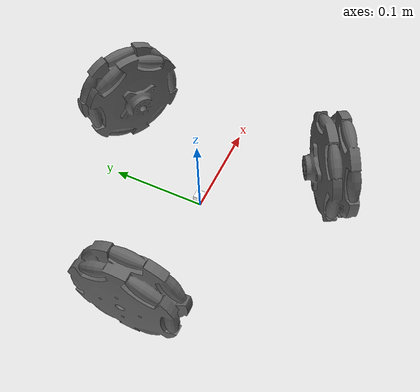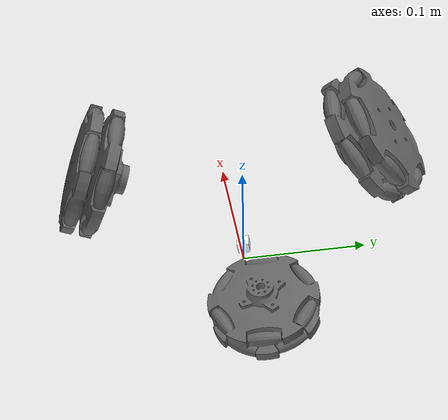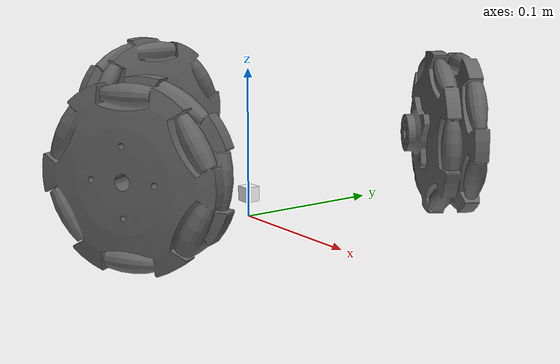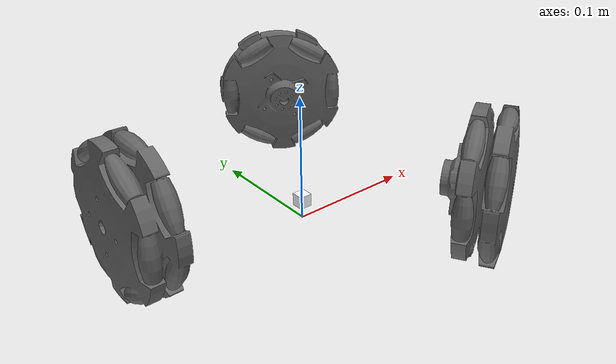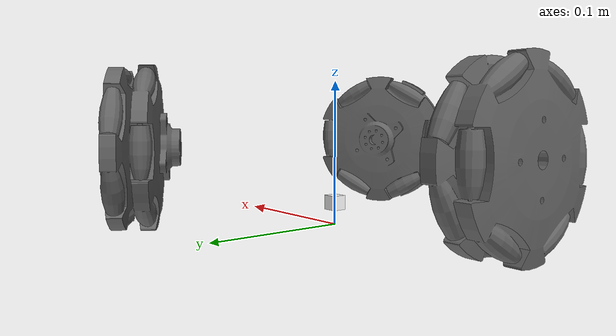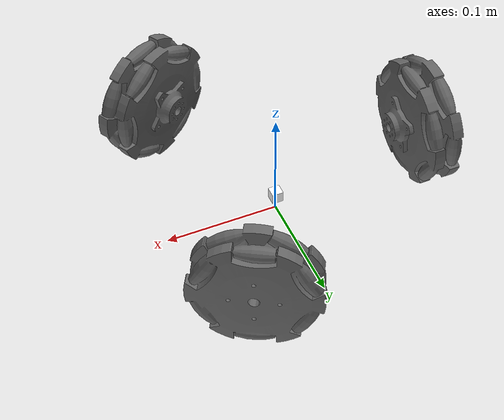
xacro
<?xml version="1.0" ?>
<robot name="omni_base" xmlns:xacro="http://ros.org/wiki/xacro">

  <link name="base_footprint"/>

  <joint name="base_joint" type="fixed">
    <parent link="base_footprint"/>
    <child link="base_link"/>
    <origin xyz="0.0 0.0 0.01575" rpy="0 0 0"/>
  </joint>

  <link name="base_link">
    <visual>
      <origin xyz="0.0 0.0 0.0" rpy="0 0 1.570796"/>
      <geometry>
        <box size="0.01 0.01 0.01"/>
      </geometry>
      <material name="white">
        <color rgba="1.0 1.0 1.0 1.0"/>
      </material>
    </visual>

    <collision>
      <origin xyz="0 0 0" rpy="0 0 0"/>
      <geometry>
        <cylinder length="0.08" radius="0.12"/>
      </geometry>
    </collision>
  </link>

  <joint name="wheel_joint_1" type="continuous">
    <parent link="base_link"/>
    <child link="wheel_link_1"/>
    <origin xyz="0.068 -0.117779 0.03925" rpy="1.570796 0 0.523598"/>
    <axis xyz="0 0 1"/>
  </joint>

  <link name="wheel_link_1">
    <visual>
      <origin xyz="0 0 -0.03" rpy="0 0 0"/>
      <geometry>
        <mesh filename="package://urdf_example/meshes/wheel.stl" scale="0.001 0.001 0.001"/>
      </geometry>
      <material name="light_black">
        <color rgba="0.4 0.4 0.4 1.0"/>
      </material>
    </visual>

    <collision>
      <origin xyz="0 0 0" rpy="0 0 0"/>
      <geometry>
        <cylinder length="0.018" radius="0.033"/>
      </geometry>
    </collision>
  </link>

  <joint name="wheel_joint_2" type="continuous">
    <parent link="base_link"/>
    <child link="wheel_link_2"/>
    <origin xyz="0.068 0.117779 0.03925" rpy="1.570796 0 2.61799"/>
    <axis xyz="0 0 1"/>
  </joint>

  <link name="wheel_link_2">
    <visual>
      <origin xyz="0 0 -0.03" rpy="0 0 0"/>
      <geometry>
        <mesh filename="package://urdf_example/meshes/wheel.stl" scale="0.001 0.001 0.001"/>
      </geometry>
      <material name="light_black">
        <color rgba="0.4 0.4 0.4 1.0"/>
      </material>
    </visual>

    <collision>
      <origin xyz="0 0 0" rpy="0 0 0"/>
      <geometry>
        <cylinder length="0.018" radius="0.033"/>
      </geometry>
    </collision>
  </link>

  <joint name="wheel_joint_3" type="continuous">
    <parent link="base_link"/>
    <child link="wheel_link_3"/>
    <origin xyz="-0.136 0.0 0.03925" rpy="0 -1.570796 0"/>
    <axis xyz="0 0 1"/>
  </joint>

  <link name="wheel_link_3">
    <visual>
      <origin xyz="0 0 -0.03" rpy="0 0 0"/>
      <geometry>
        <mesh filename="package://urdf_example/meshes/wheel.stl" scale="0.001 0.001 0.001"/>
      </geometry>
      <material name="light_black">
        <color rgba="0.4 0.4 0.4 1.0"/>
      </material>
    </visual>

    <collision>
      <origin xyz="0 0 0" rpy="0 0 0"/>
      <geometry>
        <cylinder length="0.018" radius="0.033"/>
      </geometry>
    </collision>
  </link>

</robot>
